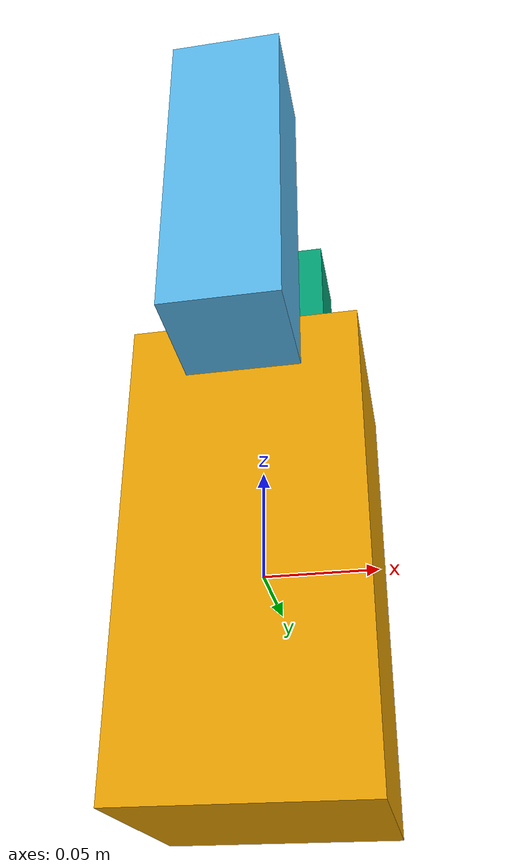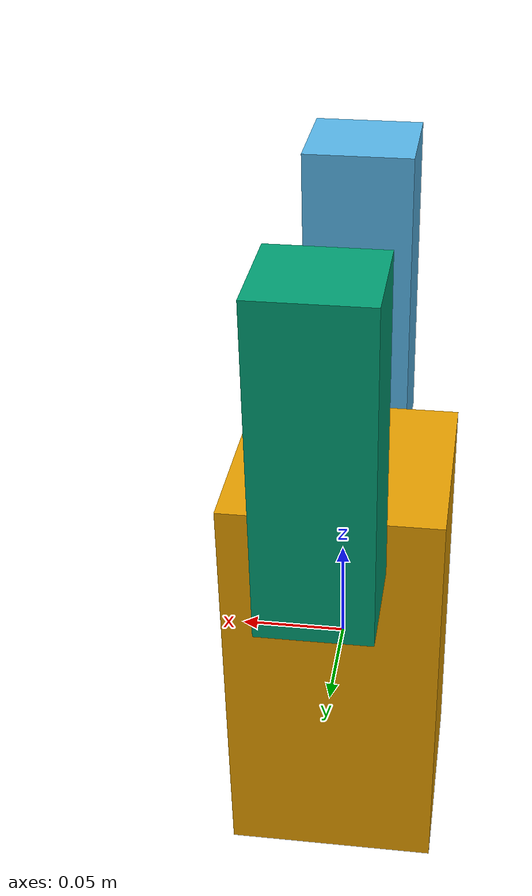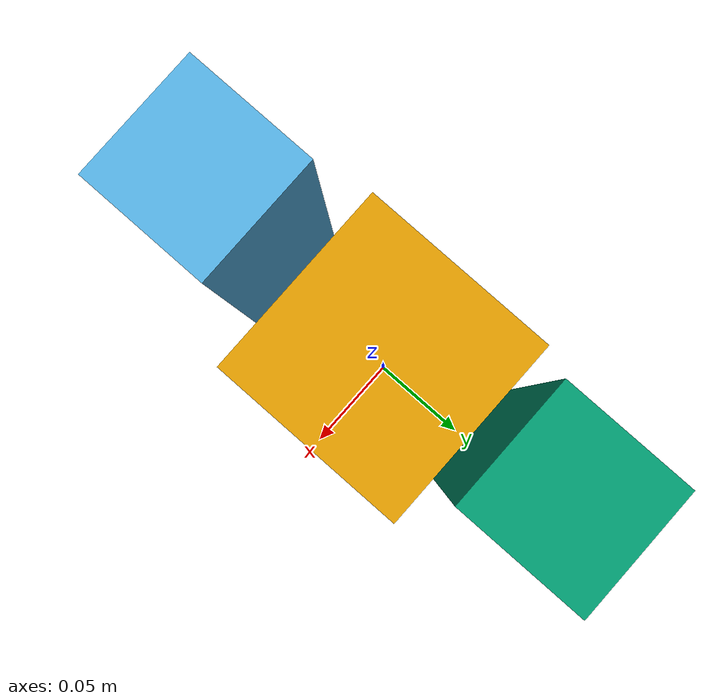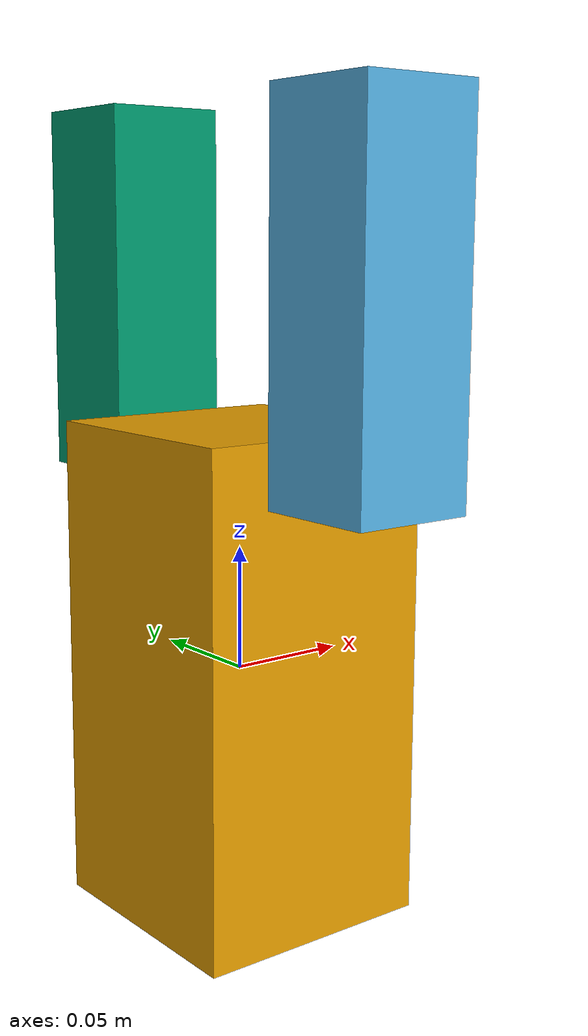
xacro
<?xml version="1.0"?>
<robot name="humanoid_with_macros" xmlns:xacro="http://www.ros.org/wiki/xacro">

  <link name="base_link">
    <visual>
      <geometry>
        <box size="0.1 0.1 0.2"/>
      </geometry>
    </visual>
    <collision>
      <geometry>
        <box size="0.1 0.1 0.2"/>
      </geometry>
    </collision>
    <inertial>
      <mass value="1.0"/>
      <inertia ixx="0.01" ixy="0.0" ixz="0.0" iyy="0.01" iyz="0.0" izz="0.01"/>
    </inertial>
  </link>

  <xacro:macro name="arm_segment" params="prefix parent_link_name origin_xyz">
    <link name="${prefix}_arm_link">
      <visual>
        <geometry>
          <box size="0.05 0.05 0.15"/>
        </geometry>
      </visual>
      <collision>
        <geometry>
          <box size="0.05 0.05 0.15"/>
        </geometry>
      </collision>
      <inertial>
        <mass value="0.5"/>
        <inertia ixx="0.001" ixy="0.0" ixz="0.0" iyy="0.001" iyz="0.0" izz="0.001"/>
      </inertial>
    </link>

    <joint name="${prefix}_joint" type="revolute">
      <parent link="${parent_link_name}"/>
      <child link="${prefix}_arm_link"/>
      <origin xyz="${origin_xyz}" rpy="0 0 0"/>
      <axis xyz="0 1 0"/>
      <limit lower="-1.57" upper="1.57" effort="100" velocity="10"/>
    </joint>
  </xacro:macro>

  <xacro:arm_segment prefix="right" parent_link_name="base_link" origin_xyz="0.0 -0.075 0.15"/>
  <xacro:arm_segment prefix="left" parent_link_name="base_link" origin_xyz="0.0 0.075 0.15"/>

</robot>
